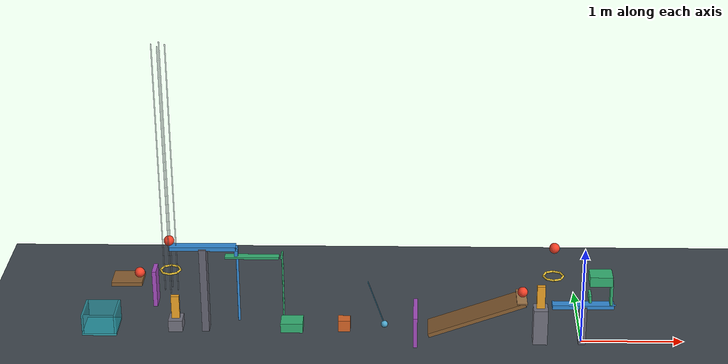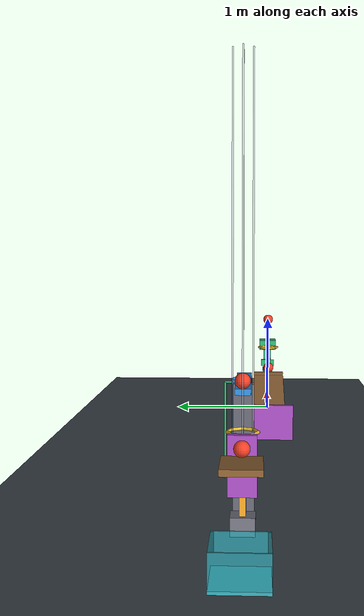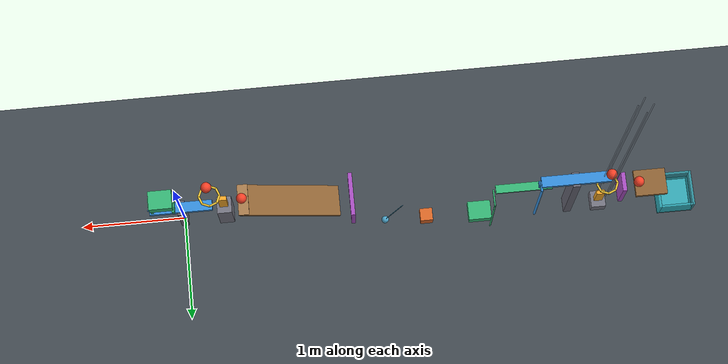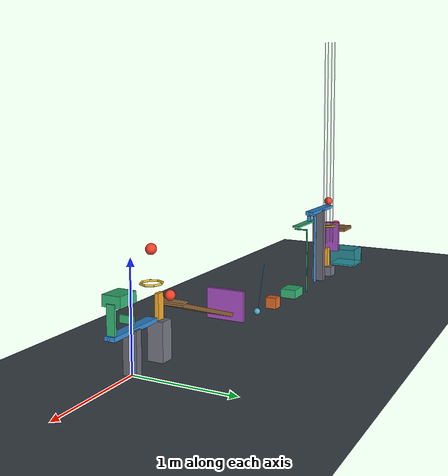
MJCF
<mujoco model="revised_chain_reaction">
  <compiler angle="degree" autolimits="true"/>
  <option timestep="0.002" gravity="0 0 -9.81" integrator="implicitfast" solver="Newton" iterations="150" tolerance="1e-10"/>
  <size njmax="4000" nconmax="800"/>

  <visual>
    <global azimuth="100" elevation="-20"/>
    <headlight ambient="0.45 0.45 0.45" diffuse="0.7 0.7 0.7" specular="0.2 0.2 0.2"/>
  </visual>

  <worldbody>
    <light name="overhead_light" pos="-2 0 5" dir="0 0 -1"/>
    <camera name="overview" pos="-2.4 -7 3.4" xyaxes="1 0 0 0 0.4 0.916515"/>

    <geom name="floor" type="plane" size="8 5 0.1" friction="0.72 0.005 0.001" condim="6" solref="0.01 0.716" solimp="0.95 0.99 0.001" rgba="0.25 0.28 0.31 1"/>

    <body name="ball1" pos="-0.30 0 1.02">
      <freejoint name="ball1_free"/>
      <geom name="ball1_sphere" type="sphere" size="0.05" mass="0.20" friction="0.72 0.005 0.001" condim="6" solref="0.01 0.716" solimp="0.95 0.99 0.001" rgba="0.95 0.25 0.15 1"/>
    </body>

    <!-- Octagonal capsule rings have minimum clear diameter 0.16 m. -->
    <body name="ring1" pos="-0.30 0 0.72">
      <geom name="ring1_01" type="capsule" fromto="0.097415 0 0 0.068883 0.068883 0" size="0.01" friction="0.72 0.005 0.001" solref="0.01 0.716" rgba="0.9 0.75 0.2 1"/>
      <geom name="ring1_02" type="capsule" fromto="0.068883 0.068883 0 0 0.097415 0" size="0.01" friction="0.72 0.005 0.001" solref="0.01 0.716" rgba="0.9 0.75 0.2 1"/>
      <geom name="ring1_03" type="capsule" fromto="0 0.097415 0 -0.068883 0.068883 0" size="0.01" friction="0.72 0.005 0.001" solref="0.01 0.716" rgba="0.9 0.75 0.2 1"/>
      <geom name="ring1_04" type="capsule" fromto="-0.068883 0.068883 0 -0.097415 0 0" size="0.01" friction="0.72 0.005 0.001" solref="0.01 0.716" rgba="0.9 0.75 0.2 1"/>
      <geom name="ring1_05" type="capsule" fromto="-0.097415 0 0 -0.068883 -0.068883 0" size="0.01" friction="0.72 0.005 0.001" solref="0.01 0.716" rgba="0.9 0.75 0.2 1"/>
      <geom name="ring1_06" type="capsule" fromto="-0.068883 -0.068883 0 0 -0.097415 0" size="0.01" friction="0.72 0.005 0.001" solref="0.01 0.716" rgba="0.9 0.75 0.2 1"/>
      <geom name="ring1_07" type="capsule" fromto="0 -0.097415 0 0.068883 -0.068883 0" size="0.01" friction="0.72 0.005 0.001" solref="0.01 0.716" rgba="0.9 0.75 0.2 1"/>
      <geom name="ring1_08" type="capsule" fromto="0.068883 -0.068883 0 0.097415 0 0" size="0.01" friction="0.72 0.005 0.001" solref="0.01 0.716" rgba="0.9 0.75 0.2 1"/>
    </body>

    <body name="lever1" pos="0 0 0.40">
      <joint name="lever1_hinge" type="hinge" axis="0 -1 0" damping="0.04" limited="true" range="0 45" solreflimit="0.004 0.716" solimplimit="0.99 0.999 0.001"/>
      <geom name="lever1_beam" type="box" size="0.30 0.05 0.02" mass="0.48" friction="0.72 0.005 0.001" condim="6" solref="0.01 0.716" rgba="0.2 0.55 0.85 1"/>
      <geom name="lever1_striker" type="sphere" pos="0.31 0 0" size="0.01" mass="0.02" friction="0.72 0.005 0.001" solref="0.01 0.716" rgba="0.2 0.55 0.85 1"/>
    </body>

    <body name="lever1_support" pos="0 0 0.20">
      <geom name="lever1_support_column" type="box" size="0.035 0.07 0.20" contype="0" conaffinity="0" rgba="0.4 0.4 0.45 1"/>
    </body>

    <body name="cart1" pos="0.16 0 0.70">
      <joint name="cart1_slide" type="slide" axis="-1 0 0" damping="0.20" limited="true" range="0 0.65"/>
      <geom name="cart1_chassis" type="box" size="0.11 0.09 0.05" mass="0.43" friction="0.72 0.005 0.001" solref="0.01 0.716" rgba="0.2 0.7 0.45 1"/>
      <geom name="cart1_pickup_mast" type="box" pos="0.11 0 -0.15" size="0.012 0.04 0.13" mass="0.04" friction="0.72 0.005 0.001" solref="0.01 0.716" rgba="0.2 0.7 0.45 1"/>
      <geom name="cart1_domino_striker" type="box" pos="-0.098 0 -0.20" size="0.012 0.07 0.035" mass="0.03" friction="0.72 0.005 0.001" solref="0.01 0.716" rgba="0.2 0.7 0.45 1"/>
    </body>

    <body name="domino1_platform" pos="-0.41 0 0.185">
      <geom name="domino1_platform_box" type="box" size="0.07 0.08 0.185" friction="0.72 0.005 0.001" solref="0.01 0.716" rgba="0.45 0.45 0.5 1"/>
    </body>

    <body name="domino1" pos="-0.41 0 0.49">
      <freejoint name="domino1_free"/>
      <geom name="domino1_box" type="box" size="0.04 0.02 0.12" mass="0.25" friction="0.72 0.005 0.001" condim="6" solref="0.01 0.716" rgba="0.95 0.65 0.15 1"/>
    </body>

    <!-- A horizontal starting seat prevents ball2 from rolling at reset.
         Domino1 must move it off the seat and onto the incline. -->
    <body name="ball2" pos="-0.59 0 0.542020">
      <freejoint name="ball2_free"/>
      <geom name="ball2_sphere" type="sphere" size="0.05" mass="0.20" friction="0.72 0.005 0.001" condim="6" solref="0.01 0.716" rgba="0.95 0.25 0.15 1"/>
    </body>

    <body name="ramp1" pos="0 0 0">
      <geom name="ramp1_deck" type="box" pos="-1.036006 0 0.302216" quat="0.984807753 0 -0.173648178 0" size="0.50 0.15 0.02" friction="0.72 0.005 0.001" condim="6" solref="0.01 0.716" rgba="0.55 0.38 0.2 1"/>
      <geom name="ramp1_starting_seat" type="box" pos="-0.60 0 0.484020" size="0.05 0.15 0.008" friction="0.72 0.005 0.001" condim="6" solref="0.01 0.716" rgba="0.65 0.48 0.3 1"/>
    </body>

    <!-- Door front face is 0.10 m beyond the low end of the ramp.
         The small release bearing holds the upper pendulum shaft. -->
    <body name="door1" pos="-1.632693 0.21 0.19">
      <joint name="door1_hinge" type="hinge" axis="0 0 -1" damping="0.04" limited="true" range="0 70" solreflimit="0.004 0.716" solimplimit="0.99 0.999 0.001"/>
      <geom name="door1_panel" type="box" pos="0 -0.21 0" size="0.02 0.21 0.16" mass="0.42" friction="0.72 0.005 0.001" solref="0.01 0.716" rgba="0.65 0.3 0.75 1"/>
      <geom name="door1_release_bearing" type="sphere" pos="-0.442822 0.0001 0.248207" size="0.001" mass="0.03" priority="2" condim="1" friction="0.72 0.005 0.001" solref="0.004 0.716" solimp="0.9999 0.99999 0.00001" rgba="0.65 0.3 0.75 1"/>
    </body>

    <!-- Preloaded torsion spring supplies the floor-sliding stage's energy.
         The door bearing restrains the shaft until the door rotates. -->
    <body name="pendulum1" pos="-2.102784 0.2101 0.532759" euler="0 -19 0">
      <joint name="pendulum1_hinge" type="hinge" axis="0 1 0" damping="0.04" stiffness="160" springref="38" limited="true" range="0 38" solreflimit="0.004 0.716" solimplimit="0.9999 0.99999 0.00001"/>
      <geom name="pendulum1_rod" type="capsule" fromto="0 0 0 0 0 -0.50" size="0.004" mass="0.08" friction="0.72 0.005 0.001" solref="0.004 0.716" solimp="0.9999 0.99999 0.00001" rgba="0.3 0.65 0.8 1"/>
      <geom name="pendulum1_bob" type="sphere" pos="0 0 -0.50" size="0.035" mass="0.27" friction="0.72 0.005 0.001" condim="6" solref="0.006 0.716" solimp="0.98 0.999 0.0005" rgba="0.3 0.65 0.8 1"/>
    </body>

    <body name="block1" pos="-2.34 0.2101 0.06">
      <freejoint name="block1_free"/>
      <geom name="block1_cube" type="box" size="0.06 0.06 0.06" mass="0.35" friction="0.72 0.005 0.001" condim="6" solref="0.006 0.716" solimp="0.98 0.999 0.0005" rgba="0.85 0.4 0.15 1"/>
    </body>

    <!-- Block1's leading face reaches cart2 after 0.35 m.
         The cart chassis reaches the seesaw's low striker after 0.42 m. -->
    <body name="cart2" pos="-2.86 0.2101 0.051">
      <joint name="cart2_slide" type="slide" axis="-1 0 0" damping="0.20" limited="true" range="0 0.54"/>
      <geom name="cart2_chassis" type="box" size="0.11 0.09 0.05" mass="0.42" friction="0.72 0.005 0.001" solref="0.006 0.716" solimp="0.98 0.999 0.0005" rgba="0.2 0.7 0.45 1"/>
      <geom name="cart2_latch_plate" type="box" pos="-0.375 0 0.749" size="0.265 0.04 0.01" mass="0.04" friction="0.72 0.005 0.001" solref="0.004 0.716" solimp="0.999 0.9999 0.0001" rgba="0.2 0.7 0.45 1"/>
      <geom name="cart2_latch_column" type="capsule" fromto="-0.09 0.15 0 -0.09 0.15 0.729" size="0.008" mass="0.02" friction="0.72 0.005 0.001" solref="0.01 0.716" rgba="0.2 0.7 0.45 1"/>
      <geom name="cart2_latch_crossbar" type="capsule" fromto="-0.09 0.15 0.729 -0.09 0 0.729" size="0.008" mass="0.02" friction="0.72 0.005 0.001" solref="0.01 0.716" rgba="0.2 0.7 0.45 1"/>
    </body>

    <body name="seesaw1" pos="-3.715 0.2101 0.90" quat="0 0 0 1">
      <joint name="seesaw1_hinge" type="hinge" axis="0 -1 0" damping="0.04" stiffness="1" springref="42" limited="true" range="0 42" solreflimit="0.004 0.716" solimplimit="0.99 0.999 0.001"/>
      <geom name="seesaw1_beam" type="box" size="0.325 0.05 0.02" mass="0.43" friction="0.72 0.005 0.001" condim="6" solref="0.006 0.716" rgba="0.2 0.55 0.85 1"/>
      <geom name="seesaw1_latch_lug" type="box" pos="-0.325 0 -0.06" size="0.018 0.025 0.03" mass="0.03" friction="0.72 0.005 0.001" solref="0.004 0.716" solimp="0.999 0.9999 0.0001" rgba="0.2 0.55 0.85 1"/>
      <geom name="seesaw1_low_striker" type="capsule" fromto="-0.325 -0.075 -0.025 -0.325 -0.075 -0.84" size="0.012" mass="0.05" friction="0.72 0.005 0.001" solref="0.006 0.716" rgba="0.2 0.55 0.85 1"/>
      <geom name="seesaw1_striker_crossbar" type="capsule" fromto="-0.325 0 0 -0.325 -0.075 -0.025" size="0.012" mass="0.04" friction="0.72 0.005 0.001" solref="0.01 0.716" rgba="0.2 0.55 0.85 1"/>
    </body>

    <body name="seesaw1_support" pos="-3.715 0.2101 0.45">
      <geom name="seesaw1_support_column" type="box" size="0.035 0.07 0.45" contype="0" conaffinity="0" rgba="0.4 0.4 0.45 1"/>
    </body>

    <body name="ball3" pos="-4.04 0.2101 0.97">
      <freejoint name="ball3_free"/>
      <geom name="ball3_sphere" type="sphere" size="0.05" mass="0.20" contype="3" conaffinity="3" friction="0.72 0.005 0.001" condim="6" solref="0.006 0.716" rgba="0.95 0.25 0.15 1"/>
    </body>

    <!-- Ball-only guide contacts permit the beam to move through the guide.
         They constrain lateral drift without changing ball3's free joint. -->
    <body name="ball3_vertical_guide" pos="-4.04 0.2101 0">
      <geom name="ball3_vertical_guide_x_positive" type="capsule" fromto="0.064 0 0.43 0.064 0 3.0" size="0.005" contype="2" conaffinity="2" friction="0.72 0.005 0.001" solref="0.006 0.716" rgba="0.65 0.7 0.75 0.35"/>
      <geom name="ball3_vertical_guide_x_negative" type="capsule" fromto="-0.064 0 0.43 -0.064 0 3.0" size="0.005" contype="2" conaffinity="2" friction="0.72 0.005 0.001" solref="0.006 0.716" rgba="0.65 0.7 0.75 0.35"/>
      <geom name="ball3_vertical_guide_y_positive" type="capsule" fromto="0 0.064 0.43 0 0.064 3.0" size="0.005" contype="2" conaffinity="2" friction="0.72 0.005 0.001" solref="0.006 0.716" rgba="0.65 0.7 0.75 0.35"/>
      <geom name="ball3_vertical_guide_y_negative" type="capsule" fromto="0 -0.064 0.43 0 -0.064 3.0" size="0.005" contype="2" conaffinity="2" friction="0.72 0.005 0.001" solref="0.006 0.716" rgba="0.65 0.7 0.75 0.35"/>
    </body>

    <body name="ring2" pos="-4.04 0.2101 0.65">
      <geom name="ring2_01" type="capsule" fromto="0.097415 0 0 0.068883 0.068883 0" size="0.01" friction="0.72 0.005 0.001" solref="0.01 0.716" rgba="0.9 0.75 0.2 1"/>
      <geom name="ring2_02" type="capsule" fromto="0.068883 0.068883 0 0 0.097415 0" size="0.01" friction="0.72 0.005 0.001" solref="0.01 0.716" rgba="0.9 0.75 0.2 1"/>
      <geom name="ring2_03" type="capsule" fromto="0 0.097415 0 -0.068883 0.068883 0" size="0.01" friction="0.72 0.005 0.001" solref="0.01 0.716" rgba="0.9 0.75 0.2 1"/>
      <geom name="ring2_04" type="capsule" fromto="-0.068883 0.068883 0 -0.097415 0 0" size="0.01" friction="0.72 0.005 0.001" solref="0.01 0.716" rgba="0.9 0.75 0.2 1"/>
      <geom name="ring2_05" type="capsule" fromto="-0.097415 0 0 -0.068883 -0.068883 0" size="0.01" friction="0.72 0.005 0.001" solref="0.01 0.716" rgba="0.9 0.75 0.2 1"/>
      <geom name="ring2_06" type="capsule" fromto="-0.068883 -0.068883 0 0 -0.097415 0" size="0.01" friction="0.72 0.005 0.001" solref="0.01 0.716" rgba="0.9 0.75 0.2 1"/>
      <geom name="ring2_07" type="capsule" fromto="0 -0.097415 0 0.068883 -0.068883 0" size="0.01" friction="0.72 0.005 0.001" solref="0.01 0.716" rgba="0.9 0.75 0.2 1"/>
      <geom name="ring2_08" type="capsule" fromto="0.068883 -0.068883 0 0.097415 0 0" size="0.01" friction="0.72 0.005 0.001" solref="0.01 0.716" rgba="0.9 0.75 0.2 1"/>
    </body>

    <!-- Ball3 strikes off-center, rather than directly over the domino COM.
         Its center at first top contact is z=0.41, 0.24 m below ring2. -->
    <body name="domino2_platform" pos="-4.015 0.2101 0.06">
      <geom name="domino2_platform_box" type="box" size="0.07 0.08 0.06" friction="0.72 0.005 0.001" solref="0.01 0.716" rgba="0.45 0.45 0.5 1"/>
    </body>

    <body name="domino2" pos="-4.015 0.2101 0.24">
      <freejoint name="domino2_free"/>
      <geom name="domino2_box" type="box" size="0.04 0.02 0.12" mass="0.25" friction="0.72 0.005 0.001" condim="6" solref="0.006 0.716" rgba="0.95 0.65 0.15 1"/>
    </body>

    <body name="flap1" pos="-4.195 0.2101 0.67">
      <joint name="flap1_hinge" type="hinge" axis="0 1 0" damping="0.04" limited="true" range="0 60" solreflimit="0.004 0.716" solimplimit="0.99 0.999 0.001"/>
      <geom name="flap1_panel" type="box" pos="0 0 -0.19" size="0.02 0.09 0.19" mass="0.28" friction="0.72 0.005 0.001" solref="0.006 0.716" rgba="0.65 0.3 0.75 1"/>
    </body>

    <body name="shelf1" pos="-4.46 0.2101 0.55">
      <geom name="shelf1_deck" type="box" size="0.15 0.125 0.02" friction="0.72 0.005 0.001" condim="6" solref="0.01 0.716" rgba="0.55 0.38 0.2 1"/>
    </body>

    <body name="ball4" pos="-4.345 0.2101 0.62">
      <freejoint name="ball4_free"/>
      <geom name="ball4_sphere" type="sphere" size="0.05" mass="0.20" friction="0.72 0.005 0.001" condim="6" solref="0.01 0.716" solimp="0.95 0.99 0.001" rgba="0.95 0.25 0.15 1"/>
    </body>

    <!-- Cup inner dimensions: 0.30 x 0.30 m.
         Wall thickness: 0.02 m. Wall height above bottom: 0.20 m.
         Shelf top is 0.55 m above the cup's inner bottom. -->
    <body name="cup1" pos="-4.76 0.2101 0">
      <geom name="cup1_bottom" type="box" pos="0 0 0.01" size="0.17 0.17 0.01" friction="0.72 0.005 0.001" condim="6" solref="0.01 0.716" solimp="0.95 0.99 0.001" rgba="0.2 0.65 0.7 1"/>
      <geom name="cup1_wall_x_positive" type="box" pos="0.16 0 0.12" size="0.01 0.17 0.10" friction="0.72 0.005 0.001" condim="6" solref="0.01 0.716" solimp="0.95 0.99 0.001" rgba="0.2 0.65 0.7 0.8"/>
      <geom name="cup1_wall_x_negative" type="box" pos="-0.16 0 0.12" size="0.01 0.17 0.10" friction="0.72 0.005 0.001" condim="6" solref="0.01 0.716" solimp="0.95 0.99 0.001" rgba="0.2 0.65 0.7 0.8"/>
      <geom name="cup1_wall_y_positive" type="box" pos="0 0.16 0.12" size="0.15 0.01 0.10" friction="0.72 0.005 0.001" condim="6" solref="0.01 0.716" solimp="0.95 0.99 0.001" rgba="0.2 0.65 0.7 0.8"/>
      <geom name="cup1_wall_y_negative" type="box" pos="0 -0.16 0.12" size="0.15 0.01 0.10" friction="0.72 0.005 0.001" condim="6" solref="0.01 0.716" solimp="0.95 0.99 0.001" rgba="0.2 0.65 0.7 0.8"/>
    </body>
  </worldbody>

  <keyframe>
    <key name="start" time="0"/>
  </keyframe>
</mujoco>
